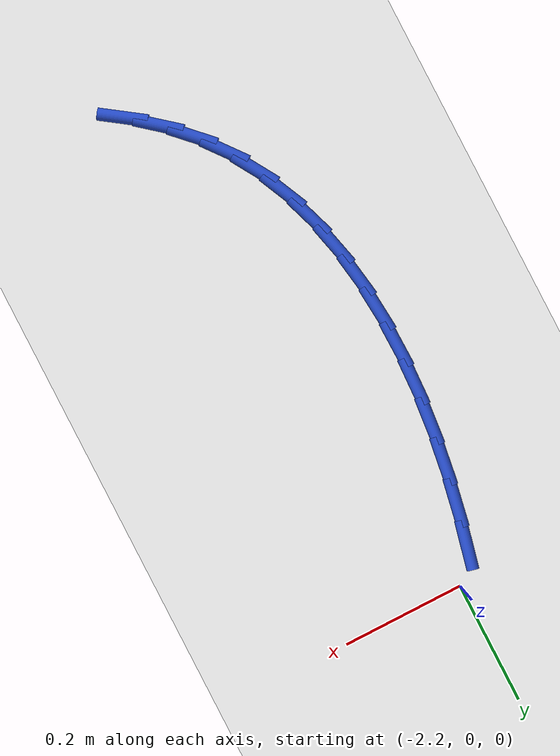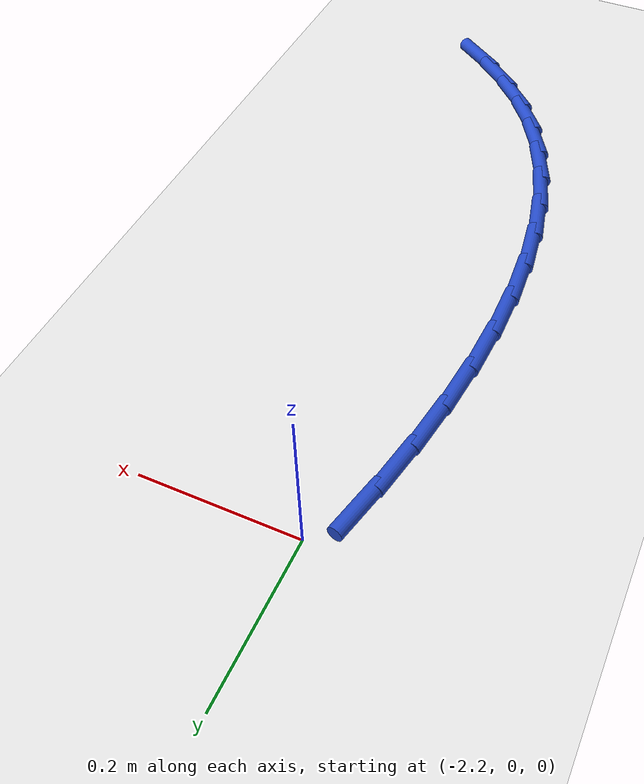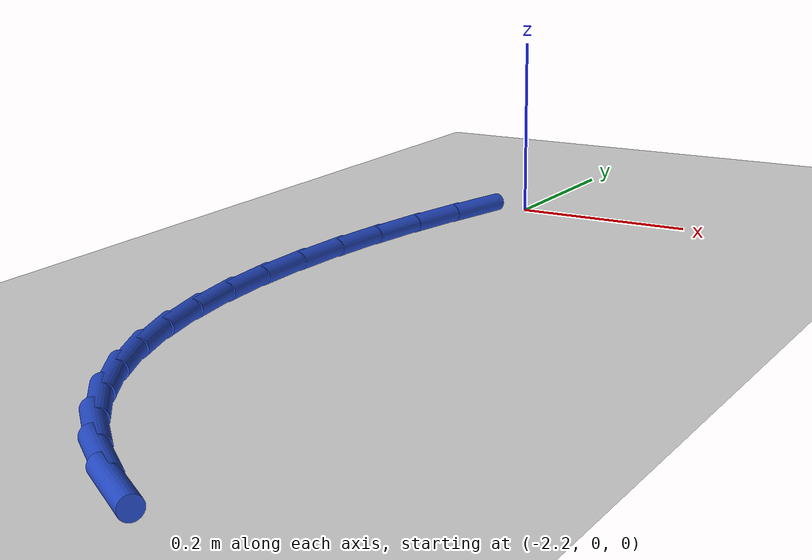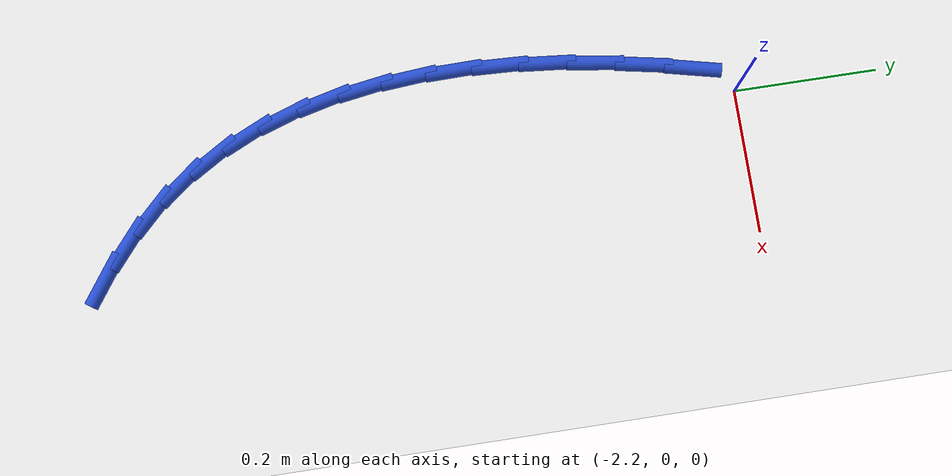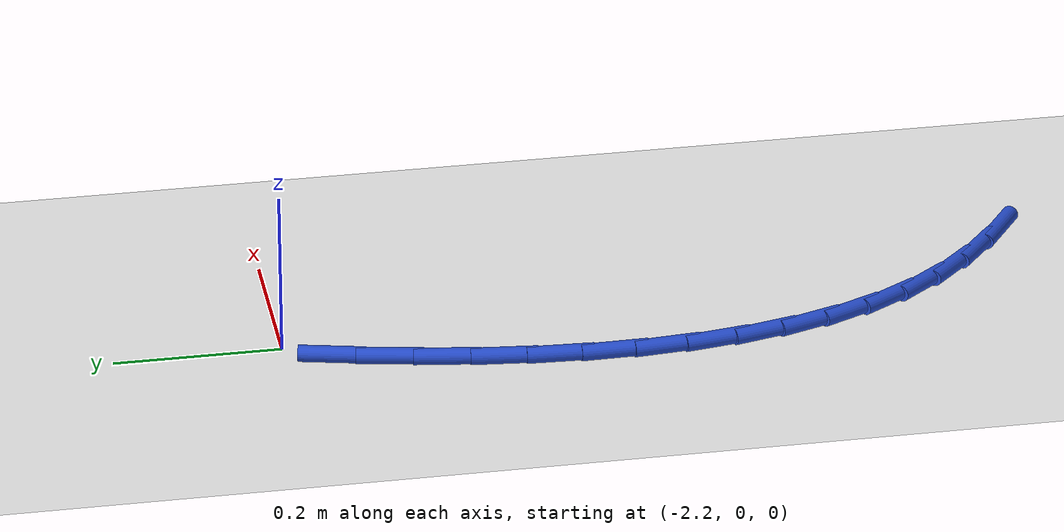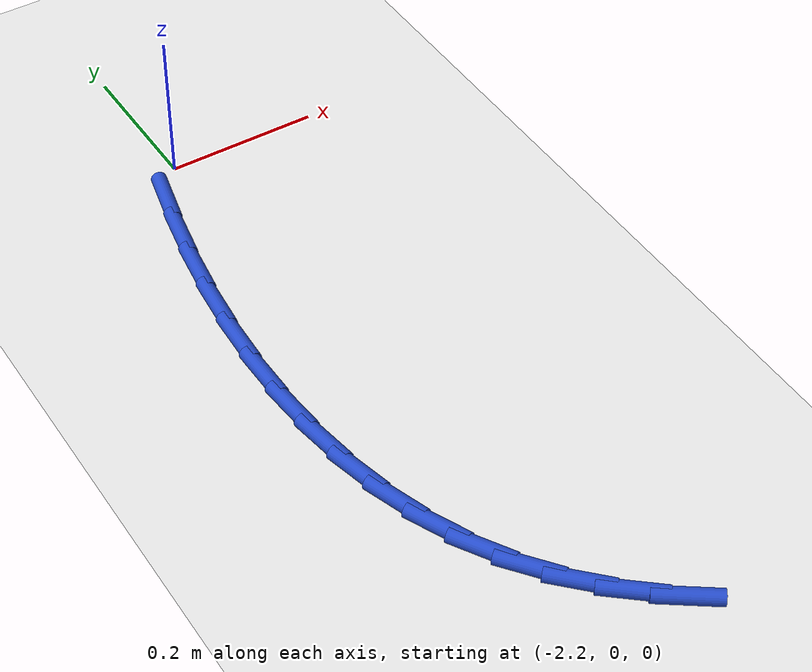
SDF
<sdf version="1.6">
 <world name="default">
  <model name="ground_plane">
   <static>1</static>
   <link name="link">
    <collision name="collision">
     <geometry><plane><normal>0 0 1</normal><size>100 100</size></plane></geometry>
     <surface><friction><ode><mu>100</mu><mu2>50</mu2></ode></friction></surface>
    </collision>
    <visual name="visual">
     <cast_shadows>0</cast_shadows>
     <geometry><plane><normal>0 0 1</normal><size>100 100</size></plane></geometry>
     <material>
      <script><uri>file://media/materials/scripts/gazebo.material</uri><name>Gazebo/WhiteGlow</name></script>
     </material>
    </visual>
   </link>
  </model>
  <model name="line">
   <link name="link_59">
    <pose>-2.239014170267757 -0.05379222175791194 0.01 0 1.57 1.3420835897961079</pose>
    <collision name="collision">
     <geometry><cylinder><radius>0.01</radius><length>0.08</length></cylinder></geometry>
    </collision>
    <visual name="visual">
     <material>
      <script><name>Gazebo/Blue</name><uri>file://media/materials/scripts/gazebo.material</uri></script>
     </material>
     <geometry><cylinder><radius>0.01</radius><length>0.08</length></cylinder></geometry>
    </visual>
   </link>
   <link name="link_60">
    <pose>-2.2544331197107152 -0.12002882397723226 0.01 0 1.57 1.3826350953822606</pose>
    <collision name="collision">
     <geometry><cylinder><radius>0.01</radius><length>0.08</length></cylinder></geometry>
    </collision>
    <visual name="visual">
     <material>
      <script><name>Gazebo/Blue</name><uri>file://media/materials/scripts/gazebo.material</uri></script>
     </material>
     <geometry><cylinder><radius>0.01</radius><length>0.08</length></cylinder></geometry>
    </visual>
   </link>
   <link name="link_61">
    <pose>-2.2670597185569017 -0.18634021241273213 0.01 0 1.57 1.426545433087532</pose>
    <collision name="collision">
     <geometry><cylinder><radius>0.01</radius><length>0.08</length></cylinder></geometry>
    </collision>
    <visual name="visual">
     <material>
      <script><name>Gazebo/Blue</name><uri>file://media/materials/scripts/gazebo.material</uri></script>
     </material>
     <geometry><cylinder><radius>0.01</radius><length>0.08</length></cylinder></geometry>
    </visual>
   </link>
   <link name="link_62">
    <pose>-2.276650658694574 -0.25236631208886334 0.01 0 1.57 1.4745528033876913</pose>
    <collision name="collision">
     <geometry><cylinder><radius>0.01</radius><length>0.08</length></cylinder></geometry>
    </collision>
    <visual name="visual">
     <material>
      <script><name>Gazebo/Blue</name><uri>file://media/materials/scripts/gazebo.material</uri></script>
     </material>
     <geometry><cylinder><radius>0.01</radius><length>0.08</length></cylinder></geometry>
    </visual>
   </link>
   <link name="link_63">
    <pose>-2.2829626320119876 -0.31774704803007775 0.01 0 1.57 1.5274885022432232</pose>
    <collision name="collision">
     <geometry><cylinder><radius>0.01</radius><length>0.08</length></cylinder></geometry>
    </collision>
    <visual name="visual">
     <material>
      <script><name>Gazebo/Blue</name><uri>file://media/materials/scripts/gazebo.material</uri></script>
     </material>
     <geometry><cylinder><radius>0.01</radius><length>0.08</length></cylinder></geometry>
    </visual>
   </link>
   <link name="link_64">
    <pose>-2.2857523303973992 -0.3821223452608248 0.01 0 1.57 -1.5553097374865323</pose>
    <collision name="collision">
     <geometry><cylinder><radius>0.01</radius><length>0.08</length></cylinder></geometry>
    </collision>
    <visual name="visual">
     <material>
      <script><name>Gazebo/Blue</name><uri>file://media/materials/scripts/gazebo.material</uri></script>
     </material>
     <geometry><cylinder><radius>0.01</radius><length>0.08</length></cylinder></geometry>
    </visual>
   </link>
   <link name="link_65">
    <pose>-2.284776445739066 -0.4451321288055565 0.01 0 1.57 -1.4896363116506899</pose>
    <collision name="collision">
     <geometry><cylinder><radius>0.01</radius><length>0.08</length></cylinder></geometry>
    </collision>
    <visual name="visual">
     <material>
      <script><name>Gazebo/Blue</name><uri>file://media/materials/scripts/gazebo.material</uri></script>
     </material>
     <geometry><cylinder><radius>0.01</radius><length>0.08</length></cylinder></geometry>
    </visual>
   </link>
   <link name="link_66">
    <pose>-2.279791669925244 -0.5064163236887248 0.01 0 1.57 -1.416010584942471</pose>
    <collision name="collision">
     <geometry><cylinder><radius>0.01</radius><length>0.08</length></cylinder></geometry>
    </collision>
    <visual name="visual">
     <material>
      <script><name>Gazebo/Blue</name><uri>file://media/materials/scripts/gazebo.material</uri></script>
     </material>
     <geometry><cylinder><radius>0.01</radius><length>0.08</length></cylinder></geometry>
    </visual>
   </link>
   <link name="link_67">
    <pose>-2.27055469484419 -0.565614854934779 0.01 0 1.57 -1.3333893189768762</pose>
    <collision name="collision">
     <geometry><cylinder><radius>0.01</radius><length>0.08</length></cylinder></geometry>
    </collision>
    <visual name="visual">
     <material>
      <script><name>Gazebo/Blue</name><uri>file://media/materials/scripts/gazebo.material</uri></script>
     </material>
     <geometry><cylinder><radius>0.01</radius><length>0.08</length></cylinder></geometry>
    </visual>
   </link>
   <link name="link_68">
    <pose>-2.2568222123841615 -0.6223676475681715 0.01 0 1.57 -1.240910537176573</pose>
    <collision name="collision">
     <geometry><cylinder><radius>0.01</radius><length>0.08</length></cylinder></geometry>
    </collision>
    <visual name="visual">
     <material>
      <script><name>Gazebo/Blue</name><uri>file://media/materials/scripts/gazebo.material</uri></script>
     </material>
     <geometry><cylinder><radius>0.01</radius><length>0.08</length></cylinder></geometry>
    </visual>
   </link>
   <link name="link_69">
    <pose>-2.238350914433414 -0.6763146266133532 0.01 0 1.57 -1.13812891348443</pose>
    <collision name="collision">
     <geometry><cylinder><radius>0.01</radius><length>0.08</length></cylinder></geometry>
    </collision>
    <visual name="visual">
     <material>
      <script><name>Gazebo/Blue</name><uri>file://media/materials/scripts/gazebo.material</uri></script>
     </material>
     <geometry><cylinder><radius>0.01</radius><length>0.08</length></cylinder></geometry>
    </visual>
   </link>
   <link name="link_70">
    <pose>-2.214897492880204 -0.7270957170947758 0.01 0 1.57 -1.025323118749017</pose>
    <collision name="collision">
     <geometry><cylinder><radius>0.01</radius><length>0.08</length></cylinder></geometry>
    </collision>
    <visual name="visual">
     <material>
      <script><name>Gazebo/Blue</name><uri>file://media/materials/scripts/gazebo.material</uri></script>
     </material>
     <geometry><cylinder><radius>0.01</radius><length>0.08</length></cylinder></geometry>
    </visual>
   </link>
   <link name="link_71">
    <pose>-2.1862186396127896 -0.7743508440368895 0.01 0 1.57 -0.9044938678596708</pose>
    <collision name="collision">
     <geometry><cylinder><radius>0.01</radius><length>0.08</length></cylinder></geometry>
    </collision>
    <visual name="visual">
     <material>
      <script><name>Gazebo/Blue</name><uri>file://media/materials/scripts/gazebo.material</uri></script>
     </material>
     <geometry><cylinder><radius>0.01</radius><length>0.08</length></cylinder></geometry>
    </visual>
   </link>
   <link name="link_72">
    <pose>-2.1520978659791576 -0.8177475088959671 0.01 0 1.57 -0.7894154164023153</pose>
    <collision name="collision">
     <geometry><cylinder><radius>0.01</radius><length>0.08</length></cylinder></geometry>
    </collision>
    <visual name="visual">
     <material>
      <script><name>Gazebo/Blue</name><uri>file://media/materials/scripts/gazebo.material</uri></script>
     </material>
     <geometry><cylinder><radius>0.01</radius><length>0.08</length></cylinder></geometry>
    </visual>
   </link>
   <link name="link_73">
    <pose>-2.1127579010271478 -0.8574048276304305 0.01 0 1.57 -0.6914772795611682</pose>
    <collision name="collision">
     <geometry><cylinder><radius>0.01</radius><length>0.08</length></cylinder></geometry>
    </collision>
    <visual name="visual">
     <material>
      <script><name>Gazebo/Blue</name><uri>file://media/materials/scripts/gazebo.material</uri></script>
     </material>
     <geometry><cylinder><radius>0.01</radius><length>0.08</length></cylinder></geometry>
    </visual>
   </link>
   <link name="link_74">
    <pose>-2.068780092235969 -0.8938106565395434 0.01 0 1.57 -0.611233273719548</pose>
    <collision name="collision">
     <geometry><cylinder><radius>0.01</radius><length>0.08</length></cylinder></geometry>
    </collision>
    <visual name="visual">
     <material>
      <script><name>Gazebo/Blue</name><uri>file://media/materials/scripts/gazebo.material</uri></script>
     </material>
     <geometry><cylinder><radius>0.01</radius><length>0.08</length></cylinder></geometry>
    </visual>
   </link>
  </model>
 </world>
</sdf>
